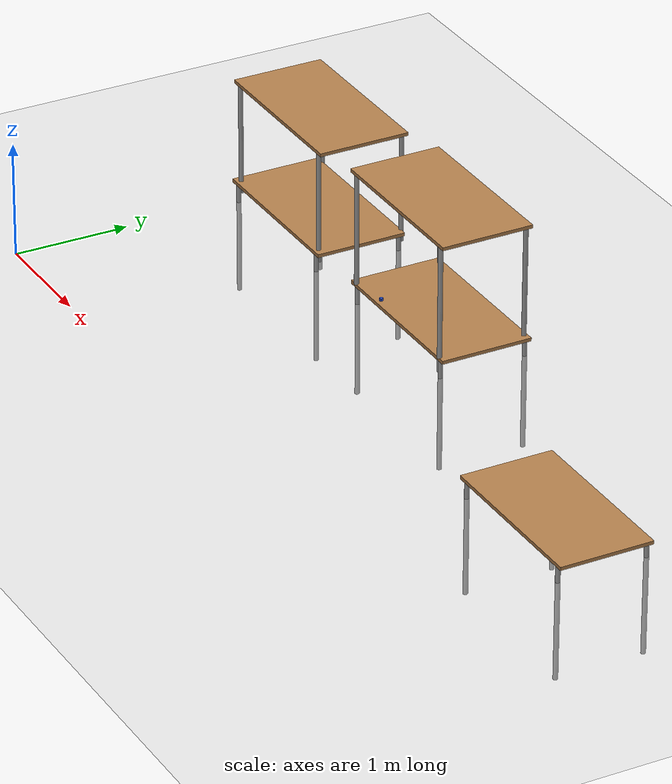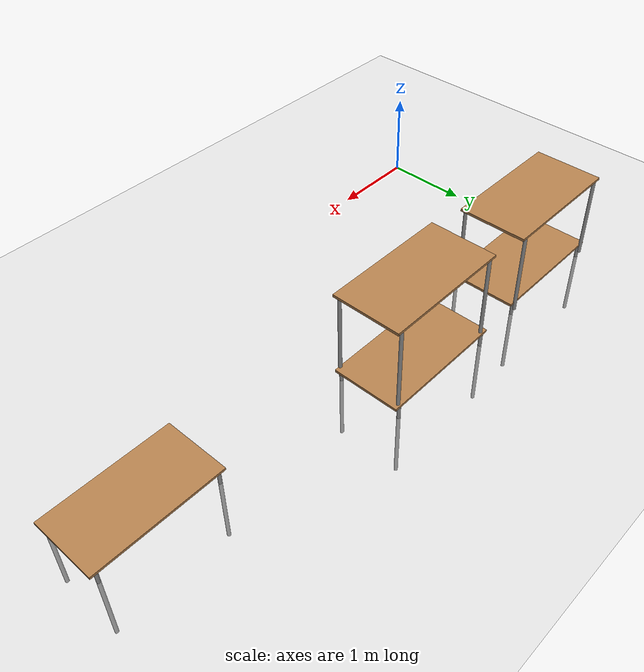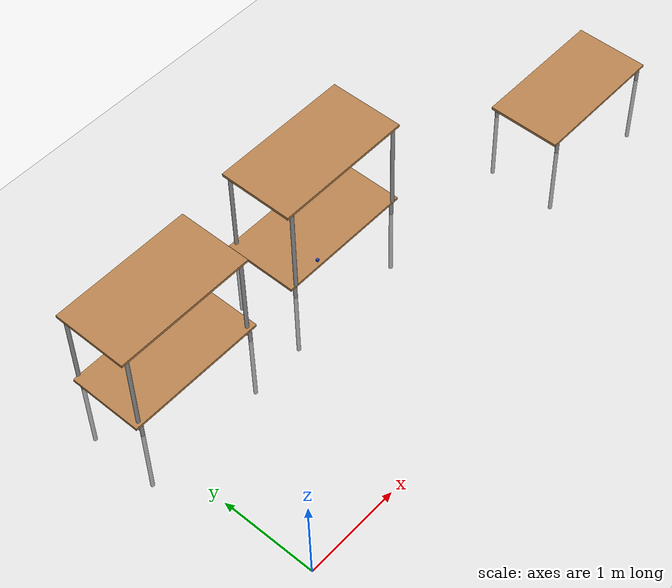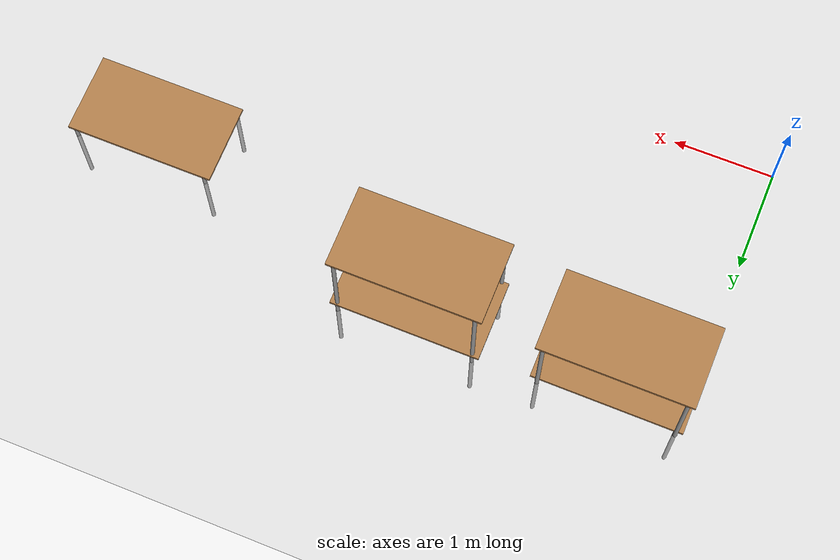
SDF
<sdf version="1.7">
 <world name="default">
  <plugin name="gazebo_link_attacher" filename="libgazebo_link_attacher.so"/>
  <light name="sun" type="directional">
   <pose>0 0 10 0 -0 0</pose>
   <diffuse>0.8 0.8 0.8 1</diffuse>
   <specular>0.2 0.2 0.2 1</specular>
   <attenuation>
    <range>1000</range>
    <constant>0.9</constant>
    <linear>0.01</linear>
    <quadratic>0.001</quadratic>
   </attenuation>
   <direction>-0.5 0.1 -0.9</direction>
   <spot><inner_angle>0</inner_angle><outer_angle>0</outer_angle><falloff>0</falloff></spot>
  </light>
  <model name="ground_plane">
   <static>1</static>
   <link name="link">
    <collision name="collision">
     <geometry><plane><normal>0 0 1</normal><size>100 100</size></plane></geometry>
     <surface><friction><ode><mu>100</mu><mu2>50</mu2></ode></friction></surface>
    </collision>
    <visual name="visual">
     <cast_shadows>0</cast_shadows>
     <geometry><plane><normal>0 0 1</normal><size>100 100</size></plane></geometry>
     <material>
      <script><uri>file://media/materials/scripts/gazebo.material</uri><name>Gazebo/Grey</name></script>
     </material>
    </visual>
   </link>
  </model>
  <gravity>0 0 -9.8</gravity>
  <magnetic_field>6e-06 2.3e-05 -4.2e-05</magnetic_field>
  <atmosphere type="adiabatic"/>
  <physics type="ode">
   <max_step_size>0.001</max_step_size>
   <real_time_factor>1</real_time_factor>
   <real_time_update_rate>1000</real_time_update_rate>
  </physics>
  <scene><ambient>0.4 0.4 0.4 1</ambient><background>0.7 0.7 0.7 1</background><shadows>1</shadows></scene>
  <audio><device>default</device></audio>
  <spherical_coordinates>
   <surface_model>EARTH_WGS84</surface_model>
   <latitude_deg>0</latitude_deg>
   <longitude_deg>0</longitude_deg>
   <elevation>0</elevation>
   <heading_deg>0</heading_deg>
  </spherical_coordinates>
  <model name="table">
   <static>1</static>
   <link name="link">
    <collision name="surface">
     <pose>0 0 1 0 -0 0</pose>
     <geometry><box><size>1.5 0.8 0.03</size></box></geometry>
     <surface><friction><ode><mu>0.6</mu><mu2>0.6</mu2></ode></friction></surface>
    </collision>
    <visual name="visual1">
     <pose>0 0 1 0 -0 0</pose>
     <geometry><box><size>1.5 0.8 0.03</size></box></geometry>
     <material>
      <script><uri>file://media/materials/scripts/gazebo.material</uri><name>Gazebo/Wood</name></script>
     </material>
    </visual>
    <collision name="front_left_leg">
     <pose>0.68 0.38 0.5 0 -0 0</pose>
     <geometry><cylinder><radius>0.02</radius><length>1</length></cylinder></geometry>
    </collision>
    <visual name="front_left_leg">
     <pose>0.68 0.38 0.5 0 -0 0</pose>
     <geometry><cylinder><radius>0.02</radius><length>1</length></cylinder></geometry>
     <material>
      <script><uri>file://media/materials/scripts/gazebo.material</uri><name>Gazebo/Grey</name></script>
     </material>
    </visual>
    <collision name="front_right_leg">
     <pose>0.68 -0.38 0.5 0 -0 0</pose>
     <geometry><cylinder><radius>0.02</radius><length>1</length></cylinder></geometry>
    </collision>
    <visual name="front_right_leg">
     <pose>0.68 -0.38 0.5 0 -0 0</pose>
     <geometry><cylinder><radius>0.02</radius><length>1</length></cylinder></geometry>
     <material>
      <script><uri>file://media/materials/scripts/gazebo.material</uri><name>Gazebo/Grey</name></script>
     </material>
    </visual>
    <collision name="back_right_leg">
     <pose>-0.68 -0.38 0.5 0 -0 0</pose>
     <geometry><cylinder><radius>0.02</radius><length>1</length></cylinder></geometry>
    </collision>
    <visual name="back_right_leg">
     <pose>-0.68 -0.38 0.5 0 -0 0</pose>
     <geometry><cylinder><radius>0.02</radius><length>1</length></cylinder></geometry>
     <material>
      <script><uri>file://media/materials/scripts/gazebo.material</uri><name>Gazebo/Grey</name></script>
     </material>
    </visual>
    <collision name="back_left_leg">
     <pose>-0.68 0.38 0.5 0 -0 0</pose>
     <geometry><cylinder><radius>0.02</radius><length>1</length></cylinder></geometry>
    </collision>
    <visual name="back_left_leg">
     <pose>-0.68 0.38 0.5 0 -0 0</pose>
     <geometry><cylinder><radius>0.02</radius><length>1</length></cylinder></geometry>
     <material>
      <script><uri>file://media/materials/scripts/gazebo.material</uri><name>Gazebo/Grey</name></script>
     </material>
    </visual>
   </link>
   <pose>0.706771 2.40732 -0.8361 0 -0 0</pose>
  </model>
  <model name="table_clone">
   <static>1</static>
   <link name="link">
    <collision name="surface">
     <pose>0 0 1 0 -0 0</pose>
     <geometry><box><size>1.5 0.8 0.03</size></box></geometry>
     <surface><friction><ode><mu>0.6</mu><mu2>0.6</mu2></ode></friction></surface>
    </collision>
    <visual name="visual1">
     <pose>0 0 1 0 -0 0</pose>
     <geometry><box><size>1.5 0.8 0.03</size></box></geometry>
     <material>
      <script><uri>file://media/materials/scripts/gazebo.material</uri><name>Gazebo/Wood</name></script>
     </material>
    </visual>
    <collision name="front_left_leg">
     <pose>0.68 0.38 0.5 0 -0 0</pose>
     <geometry><cylinder><radius>0.02</radius><length>1</length></cylinder></geometry>
    </collision>
    <visual name="front_left_leg">
     <pose>0.68 0.38 0.5 0 -0 0</pose>
     <geometry><cylinder><radius>0.02</radius><length>1</length></cylinder></geometry>
     <material>
      <script><uri>file://media/materials/scripts/gazebo.material</uri><name>Gazebo/Grey</name></script>
     </material>
    </visual>
    <collision name="front_right_leg">
     <pose>0.68 -0.38 0.5 0 -0 0</pose>
     <geometry><cylinder><radius>0.02</radius><length>1</length></cylinder></geometry>
    </collision>
    <visual name="front_right_leg">
     <pose>0.68 -0.38 0.5 0 -0 0</pose>
     <geometry><cylinder><radius>0.02</radius><length>1</length></cylinder></geometry>
     <material>
      <script><uri>file://media/materials/scripts/gazebo.material</uri><name>Gazebo/Grey</name></script>
     </material>
    </visual>
    <collision name="back_right_leg">
     <pose>-0.68 -0.38 0.5 0 -0 0</pose>
     <geometry><cylinder><radius>0.02</radius><length>1</length></cylinder></geometry>
    </collision>
    <visual name="back_right_leg">
     <pose>-0.68 -0.38 0.5 0 -0 0</pose>
     <geometry><cylinder><radius>0.02</radius><length>1</length></cylinder></geometry>
     <material>
      <script><uri>file://media/materials/scripts/gazebo.material</uri><name>Gazebo/Grey</name></script>
     </material>
    </visual>
    <collision name="back_left_leg">
     <pose>-0.68 0.38 0.5 0 -0 0</pose>
     <geometry><cylinder><radius>0.02</radius><length>1</length></cylinder></geometry>
    </collision>
    <visual name="back_left_leg">
     <pose>-0.68 0.38 0.5 0 -0 0</pose>
     <geometry><cylinder><radius>0.02</radius><length>1</length></cylinder></geometry>
     <material>
      <script><uri>file://media/materials/scripts/gazebo.material</uri><name>Gazebo/Grey</name></script>
     </material>
    </visual>
   </link>
   <pose>0.702914 2.43241 0.072838 0 -0 0</pose>
  </model>
  <model name="table_clone_0">
   <static>1</static>
   <link name="link">
    <collision name="surface">
     <pose>0 0 1 0 -0 0</pose>
     <geometry><box><size>1.5 0.8 0.03</size></box></geometry>
     <surface><friction><ode><mu>0.6</mu><mu2>0.6</mu2></ode></friction></surface>
    </collision>
    <visual name="visual1">
     <pose>0 0 1 0 -0 0</pose>
     <geometry><box><size>1.5 0.8 0.03</size></box></geometry>
     <material>
      <script><uri>file://media/materials/scripts/gazebo.material</uri><name>Gazebo/Wood</name></script>
     </material>
    </visual>
    <collision name="front_left_leg">
     <pose>0.68 0.38 0.5 0 -0 0</pose>
     <geometry><cylinder><radius>0.02</radius><length>1</length></cylinder></geometry>
    </collision>
    <visual name="front_left_leg">
     <pose>0.68 0.38 0.5 0 -0 0</pose>
     <geometry><cylinder><radius>0.02</radius><length>1</length></cylinder></geometry>
     <material>
      <script><uri>file://media/materials/scripts/gazebo.material</uri><name>Gazebo/Grey</name></script>
     </material>
    </visual>
    <collision name="front_right_leg">
     <pose>0.68 -0.38 0.5 0 -0 0</pose>
     <geometry><cylinder><radius>0.02</radius><length>1</length></cylinder></geometry>
    </collision>
    <visual name="front_right_leg">
     <pose>0.68 -0.38 0.5 0 -0 0</pose>
     <geometry><cylinder><radius>0.02</radius><length>1</length></cylinder></geometry>
     <material>
      <script><uri>file://media/materials/scripts/gazebo.material</uri><name>Gazebo/Grey</name></script>
     </material>
    </visual>
    <collision name="back_right_leg">
     <pose>-0.68 -0.38 0.5 0 -0 0</pose>
     <geometry><cylinder><radius>0.02</radius><length>1</length></cylinder></geometry>
    </collision>
    <visual name="back_right_leg">
     <pose>-0.68 -0.38 0.5 0 -0 0</pose>
     <geometry><cylinder><radius>0.02</radius><length>1</length></cylinder></geometry>
     <material>
      <script><uri>file://media/materials/scripts/gazebo.material</uri><name>Gazebo/Grey</name></script>
     </material>
    </visual>
    <collision name="back_left_leg">
     <pose>-0.68 0.38 0.5 0 -0 0</pose>
     <geometry><cylinder><radius>0.02</radius><length>1</length></cylinder></geometry>
    </collision>
    <visual name="back_left_leg">
     <pose>-0.68 0.38 0.5 0 -0 0</pose>
     <geometry><cylinder><radius>0.02</radius><length>1</length></cylinder></geometry>
     <material>
      <script><uri>file://media/materials/scripts/gazebo.material</uri><name>Gazebo/Grey</name></script>
     </material>
    </visual>
   </link>
   <pose>2.70734 2.44066 -0.8361 0 -0 0</pose>
  </model>
  <model name="table_clone_1">
   <static>1</static>
   <link name="link">
    <collision name="surface">
     <pose>0 0 1 0 -0 0</pose>
     <geometry><box><size>1.5 0.8 0.03</size></box></geometry>
     <surface><friction><ode><mu>0.6</mu><mu2>0.6</mu2></ode></friction></surface>
    </collision>
    <visual name="visual1">
     <pose>0 0 1 0 -0 0</pose>
     <geometry><box><size>1.5 0.8 0.03</size></box></geometry>
     <material>
      <script><uri>file://media/materials/scripts/gazebo.material</uri><name>Gazebo/Wood</name></script>
     </material>
    </visual>
    <collision name="front_left_leg">
     <pose>0.68 0.38 0.5 0 -0 0</pose>
     <geometry><cylinder><radius>0.02</radius><length>1</length></cylinder></geometry>
    </collision>
    <visual name="front_left_leg">
     <pose>0.68 0.38 0.5 0 -0 0</pose>
     <geometry><cylinder><radius>0.02</radius><length>1</length></cylinder></geometry>
     <material>
      <script><uri>file://media/materials/scripts/gazebo.material</uri><name>Gazebo/Grey</name></script>
     </material>
    </visual>
    <collision name="front_right_leg">
     <pose>0.68 -0.38 0.5 0 -0 0</pose>
     <geometry><cylinder><radius>0.02</radius><length>1</length></cylinder></geometry>
    </collision>
    <visual name="front_right_leg">
     <pose>0.68 -0.38 0.5 0 -0 0</pose>
     <geometry><cylinder><radius>0.02</radius><length>1</length></cylinder></geometry>
     <material>
      <script><uri>file://media/materials/scripts/gazebo.material</uri><name>Gazebo/Grey</name></script>
     </material>
    </visual>
    <collision name="back_right_leg">
     <pose>-0.68 -0.38 0.5 0 -0 0</pose>
     <geometry><cylinder><radius>0.02</radius><length>1</length></cylinder></geometry>
    </collision>
    <visual name="back_right_leg">
     <pose>-0.68 -0.38 0.5 0 -0 0</pose>
     <geometry><cylinder><radius>0.02</radius><length>1</length></cylinder></geometry>
     <material>
      <script><uri>file://media/materials/scripts/gazebo.material</uri><name>Gazebo/Grey</name></script>
     </material>
    </visual>
    <collision name="back_left_leg">
     <pose>-0.68 0.38 0.5 0 -0 0</pose>
     <geometry><cylinder><radius>0.02</radius><length>1</length></cylinder></geometry>
    </collision>
    <visual name="back_left_leg">
     <pose>-0.68 0.38 0.5 0 -0 0</pose>
     <geometry><cylinder><radius>0.02</radius><length>1</length></cylinder></geometry>
     <material>
      <script><uri>file://media/materials/scripts/gazebo.material</uri><name>Gazebo/Grey</name></script>
     </material>
    </visual>
   </link>
   <pose>2.71012 2.43 0.174783 0 -0 0</pose>
  </model>
  <model name="table_clone_clone">
   <static>1</static>
   <link name="link">
    <collision name="surface">
     <pose>0 0 1 0 -0 0</pose>
     <geometry><box><size>1.5 0.8 0.03</size></box></geometry>
     <surface><friction><ode><mu>0.6</mu><mu2>0.6</mu2></ode></friction></surface>
    </collision>
    <visual name="visual1">
     <pose>0 0 1 0 -0 0</pose>
     <geometry><box><size>1.5 0.8 0.03</size></box></geometry>
     <material>
      <script><uri>file://media/materials/scripts/gazebo.material</uri><name>Gazebo/Wood</name></script>
     </material>
    </visual>
    <collision name="front_left_leg">
     <pose>0.68 0.38 0.5 0 -0 0</pose>
     <geometry><cylinder><radius>0.02</radius><length>1</length></cylinder></geometry>
    </collision>
    <visual name="front_left_leg">
     <pose>0.68 0.38 0.5 0 -0 0</pose>
     <geometry><cylinder><radius>0.02</radius><length>1</length></cylinder></geometry>
     <material>
      <script><uri>file://media/materials/scripts/gazebo.material</uri><name>Gazebo/Grey</name></script>
     </material>
    </visual>
    <collision name="front_right_leg">
     <pose>0.68 -0.38 0.5 0 -0 0</pose>
     <geometry><cylinder><radius>0.02</radius><length>1</length></cylinder></geometry>
    </collision>
    <visual name="front_right_leg">
     <pose>0.68 -0.38 0.5 0 -0 0</pose>
     <geometry><cylinder><radius>0.02</radius><length>1</length></cylinder></geometry>
     <material>
      <script><uri>file://media/materials/scripts/gazebo.material</uri><name>Gazebo/Grey</name></script>
     </material>
    </visual>
    <collision name="back_right_leg">
     <pose>-0.68 -0.38 0.5 0 -0 0</pose>
     <geometry><cylinder><radius>0.02</radius><length>1</length></cylinder></geometry>
    </collision>
    <visual name="back_right_leg">
     <pose>-0.68 -0.38 0.5 0 -0 0</pose>
     <geometry><cylinder><radius>0.02</radius><length>1</length></cylinder></geometry>
     <material>
      <script><uri>file://media/materials/scripts/gazebo.material</uri><name>Gazebo/Grey</name></script>
     </material>
    </visual>
    <collision name="back_left_leg">
     <pose>-0.68 0.38 0.5 0 -0 0</pose>
     <geometry><cylinder><radius>0.02</radius><length>1</length></cylinder></geometry>
    </collision>
    <visual name="back_left_leg">
     <pose>-0.68 0.38 0.5 0 -0 0</pose>
     <geometry><cylinder><radius>0.02</radius><length>1</length></cylinder></geometry>
     <material>
      <script><uri>file://media/materials/scripts/gazebo.material</uri><name>Gazebo/Grey</name></script>
     </material>
    </visual>
   </link>
   <pose>5.76657 1.72103 -0.853565 0 -0 0</pose>
  </model>
  <model name="wood_cube_blue">
   <link name="link">
    <pose>-0 0 0.0125 0 -0 0</pose>
    <inertial>
     <mass>0.0073</mass>
     <inertia><ixx>7.6e-07</ixx><ixy>0</ixy><ixz>0</ixz><iyy>7.6e-07</iyy><iyz>0</iyz><izz>7.6e-07</izz></inertia>
    </inertial>
    <visual name="visual">
     <geometry><box><size>0.025 0.025 0.025</size></box></geometry>
     <material>
      <script><uri>file://media/materials/scripts/gazebo.material</uri><name>Gazebo/Blue</name></script>
      <shader type="pixel"><normal_map>__default__</normal_map></shader>
      <ambient>0 0 1 1</ambient>
      <diffuse>0 0 1 1</diffuse>
      <specular>0.1 0.1 0.1 1</specular>
      <emissive>0 0 0 1</emissive>
     </material>
    </visual>
    <collision name="collision">
     <geometry><box><size>0.025 0.025 0.025</size></box></geometry>
     <surface>
      <friction>
       <ode><mu>1</mu><mu2>1</mu2><fdir1>0 0 0</fdir1><slip1>0</slip1><slip2>0</slip2></ode>
       <torsional>
        <coefficient>1</coefficient>
        <patch_radius>0</patch_radius>
        <surface_radius>0.01</surface_radius>
        <use_patch_radius>0</use_patch_radius>
        <ode><slip>0</slip></ode>
       </torsional>
      </friction>
      <bounce><restitution_coefficient>0</restitution_coefficient><threshold>1e+06</threshold></bounce>
      <contact>
       <collide_without_contact>0</collide_without_contact>
       <collide_without_contact_bitmask>1</collide_without_contact_bitmask>
       <collide_bitmask>1</collide_bitmask>
       <ode>
        <soft_cfm>0</soft_cfm>
        <soft_erp>0.2</soft_erp>
        <kp>100000</kp>
        <kd>100</kd>
        <max_vel>100</max_vel>
        <min_depth>0.001</min_depth>
       </ode>
       <bullet>
        <split_impulse>1</split_impulse>
        <split_impulse_penetration_threshold>-0.01</split_impulse_penetration_threshold>
        <soft_cfm>0</soft_cfm>
        <soft_erp>0.2</soft_erp>
        <kp>100000</kp>
        <kd>100</kd>
       </bullet>
      </contact>
     </surface>
    </collision>
   </link>
   <static>0</static>
   <pose>2.37135 2.08958 0.178163 -0.001028 -1.1e-05 -0</pose>
  </model>
 </world>
</sdf>
